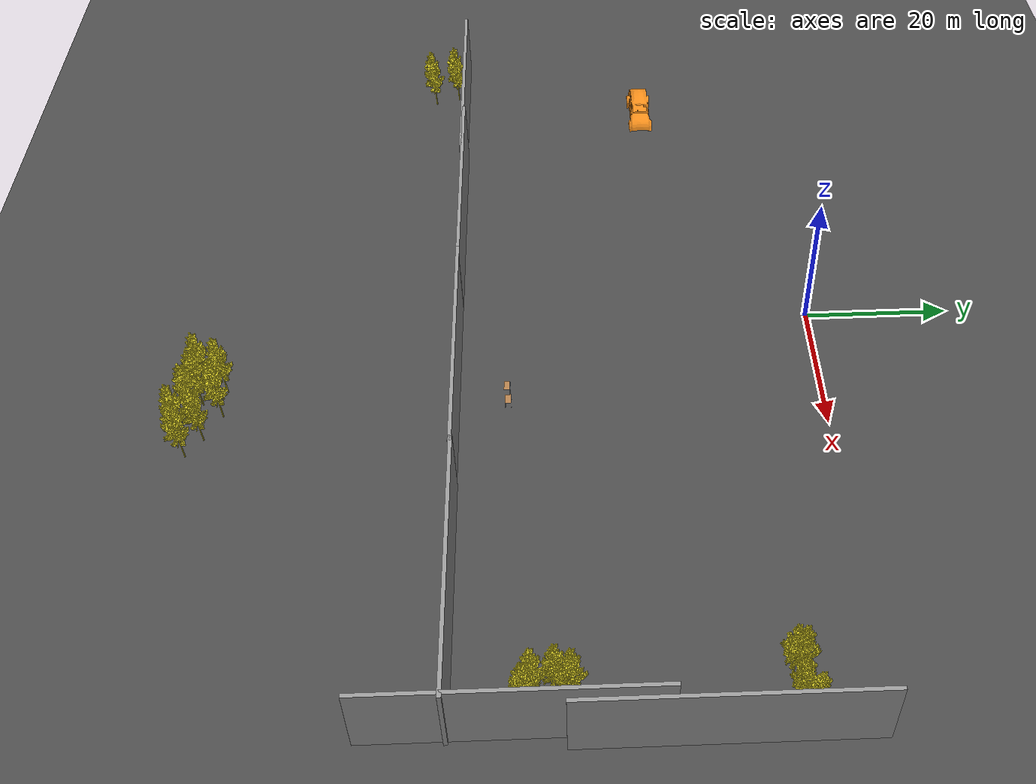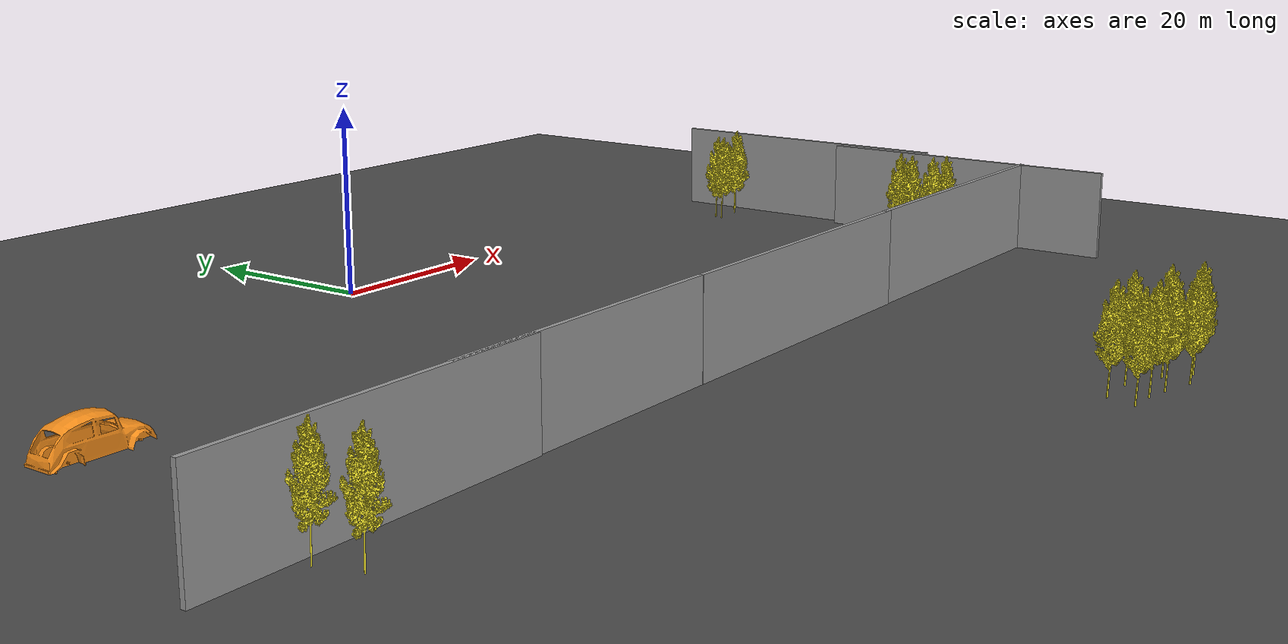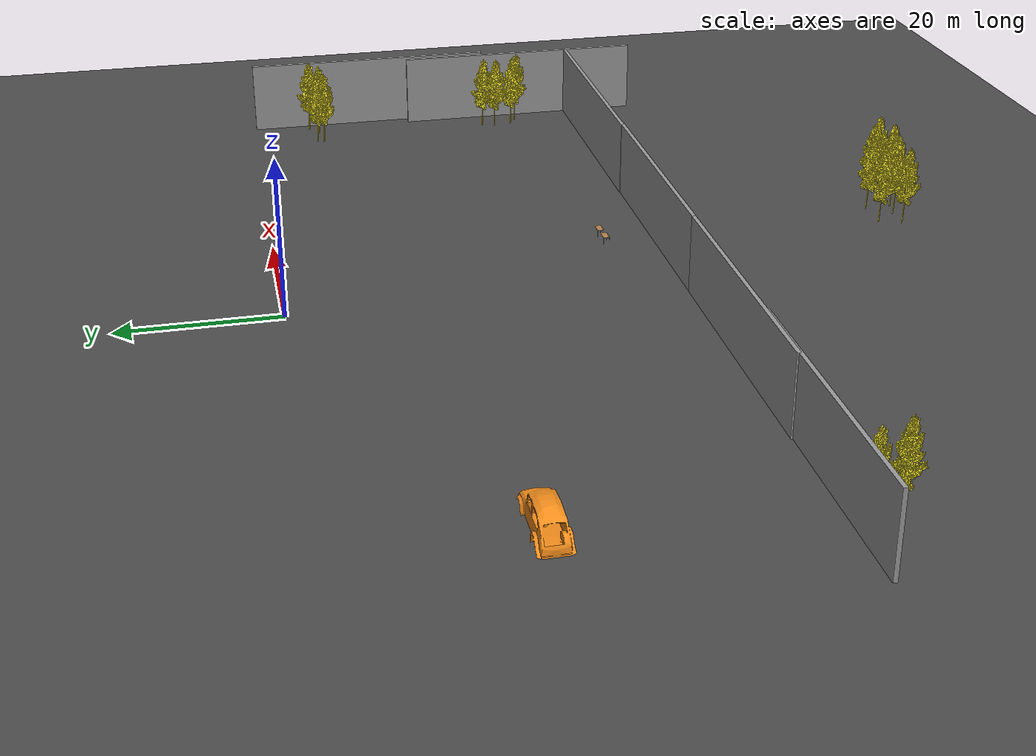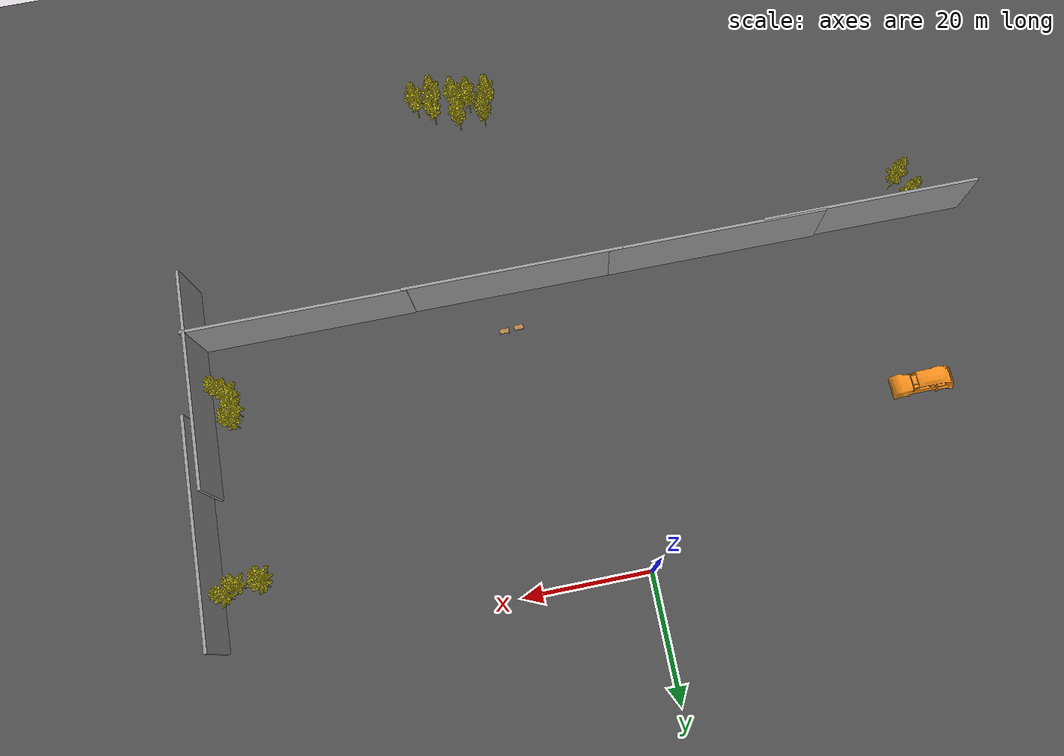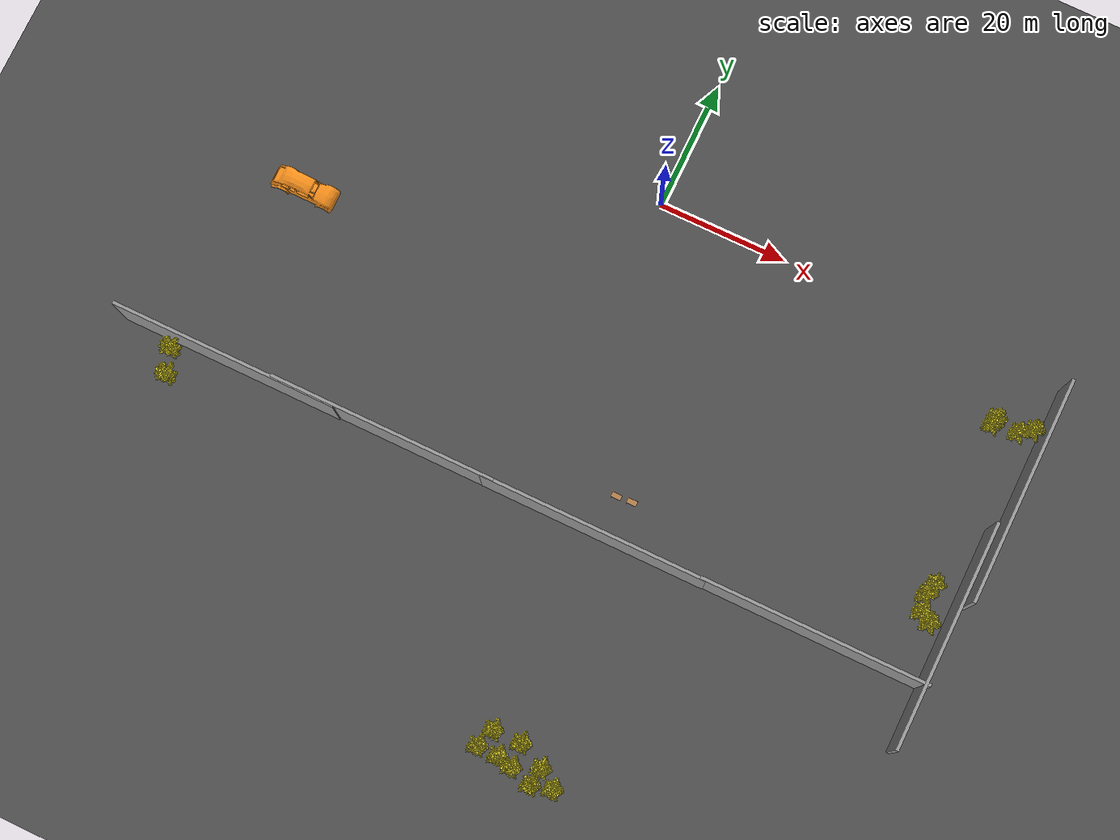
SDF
<sdf version="1.6">
 <world name="default">
  <model name="ground_plane">
   <static>1</static>
   <link name="link">
    <collision name="collision">
     <geometry><plane><normal>0 0 1</normal><size>40000 40000</size></plane></geometry>
     <surface>
      <contact><collide_bitmask>65535</collide_bitmask></contact>
      <friction><ode><mu>100</mu><mu2>50</mu2></ode></friction>
     </surface>
    </collision>
    <visual name="visual">
     <cast_shadows>0</cast_shadows>
     <geometry><plane><normal>0 0 1</normal><size>130 180</size></plane></geometry>
     <material>
      <script><uri>file://media/materials/scripts/gazebo.material</uri><name>Gazebo/Road</name></script>
     </material>
    </visual>
   </link>
  </model>
  <model name="table">
   <static>1</static>
   <link name="link">
    <collision name="surface">
     <pose>0 0 1 0 -0 0</pose>
     <geometry><box><size>1.5 0.8 0.03</size></box></geometry>
     <surface><friction><ode><mu>0.6</mu><mu2>0.6</mu2></ode></friction></surface>
    </collision>
    <visual name="visual1">
     <pose>0 0 1 0 -0 0</pose>
     <geometry><box><size>1.5 0.8 0.03</size></box></geometry>
     <material>
      <script><uri>file://media/materials/scripts/gazebo.material</uri><name>Gazebo/Wood</name></script>
     </material>
    </visual>
    <collision name="front_left_leg">
     <pose>0.68 0.38 0.5 0 -0 0</pose>
     <geometry><cylinder><radius>0.02</radius><length>1</length></cylinder></geometry>
    </collision>
    <visual name="front_left_leg">
     <pose>0.68 0.38 0.5 0 -0 0</pose>
     <geometry><cylinder><radius>0.02</radius><length>1</length></cylinder></geometry>
     <material>
      <script><uri>file://media/materials/scripts/gazebo.material</uri><name>Gazebo/Grey</name></script>
     </material>
    </visual>
    <collision name="front_right_leg">
     <pose>0.68 -0.38 0.5 0 -0 0</pose>
     <geometry><cylinder><radius>0.02</radius><length>1</length></cylinder></geometry>
    </collision>
    <visual name="front_right_leg">
     <pose>0.68 -0.38 0.5 0 -0 0</pose>
     <geometry><cylinder><radius>0.02</radius><length>1</length></cylinder></geometry>
     <material>
      <script><uri>file://media/materials/scripts/gazebo.material</uri><name>Gazebo/Grey</name></script>
     </material>
    </visual>
    <collision name="back_right_leg">
     <pose>-0.68 -0.38 0.5 0 -0 0</pose>
     <geometry><cylinder><radius>0.02</radius><length>1</length></cylinder></geometry>
    </collision>
    <visual name="back_right_leg">
     <pose>-0.68 -0.38 0.5 0 -0 0</pose>
     <geometry><cylinder><radius>0.02</radius><length>1</length></cylinder></geometry>
     <material>
      <script><uri>file://media/materials/scripts/gazebo.material</uri><name>Gazebo/Grey</name></script>
     </material>
    </visual>
    <collision name="back_left_leg">
     <pose>-0.68 0.38 0.5 0 -0 0</pose>
     <geometry><cylinder><radius>0.02</radius><length>1</length></cylinder></geometry>
    </collision>
    <visual name="back_left_leg">
     <pose>-0.68 0.38 0.5 0 -0 0</pose>
     <geometry><cylinder><radius>0.02</radius><length>1</length></cylinder></geometry>
     <material>
      <script><uri>file://media/materials/scripts/gazebo.material</uri><name>Gazebo/Grey</name></script>
     </material>
    </visual>
   </link>
   <pose>15.0111 -42.1076 0 0 -0 0</pose>
  </model>
  <model name="table_0">
   <static>1</static>
   <link name="link">
    <collision name="surface">
     <pose>0 0 1 0 -0 0</pose>
     <geometry><box><size>1.5 0.8 0.03</size></box></geometry>
     <surface><friction><ode><mu>0.6</mu><mu2>0.6</mu2></ode></friction></surface>
    </collision>
    <visual name="visual1">
     <pose>0 0 1 0 -0 0</pose>
     <geometry><box><size>1.5 0.8 0.03</size></box></geometry>
     <material>
      <script><uri>file://media/materials/scripts/gazebo.material</uri><name>Gazebo/Wood</name></script>
     </material>
    </visual>
    <collision name="front_left_leg">
     <pose>0.68 0.38 0.5 0 -0 0</pose>
     <geometry><cylinder><radius>0.02</radius><length>1</length></cylinder></geometry>
    </collision>
    <visual name="front_left_leg">
     <pose>0.68 0.38 0.5 0 -0 0</pose>
     <geometry><cylinder><radius>0.02</radius><length>1</length></cylinder></geometry>
     <material>
      <script><uri>file://media/materials/scripts/gazebo.material</uri><name>Gazebo/Grey</name></script>
     </material>
    </visual>
    <collision name="front_right_leg">
     <pose>0.68 -0.38 0.5 0 -0 0</pose>
     <geometry><cylinder><radius>0.02</radius><length>1</length></cylinder></geometry>
    </collision>
    <visual name="front_right_leg">
     <pose>0.68 -0.38 0.5 0 -0 0</pose>
     <geometry><cylinder><radius>0.02</radius><length>1</length></cylinder></geometry>
     <material>
      <script><uri>file://media/materials/scripts/gazebo.material</uri><name>Gazebo/Grey</name></script>
     </material>
    </visual>
    <collision name="back_right_leg">
     <pose>-0.68 -0.38 0.5 0 -0 0</pose>
     <geometry><cylinder><radius>0.02</radius><length>1</length></cylinder></geometry>
    </collision>
    <visual name="back_right_leg">
     <pose>-0.68 -0.38 0.5 0 -0 0</pose>
     <geometry><cylinder><radius>0.02</radius><length>1</length></cylinder></geometry>
     <material>
      <script><uri>file://media/materials/scripts/gazebo.material</uri><name>Gazebo/Grey</name></script>
     </material>
    </visual>
    <collision name="back_left_leg">
     <pose>-0.68 0.38 0.5 0 -0 0</pose>
     <geometry><cylinder><radius>0.02</radius><length>1</length></cylinder></geometry>
    </collision>
    <visual name="back_left_leg">
     <pose>-0.68 0.38 0.5 0 -0 0</pose>
     <geometry><cylinder><radius>0.02</radius><length>1</length></cylinder></geometry>
     <material>
      <script><uri>file://media/materials/scripts/gazebo.material</uri><name>Gazebo/Grey</name></script>
     </material>
    </visual>
   </link>
   <pose>12.6248 -42.2786 0 0 -0 0</pose>
  </model>
  <model name="wall1_clone_clone_0_clone_3">
   <link name="link">
    <enable_wind>1</enable_wind>
    <inertial>
     <mass>1</mass>
     <inertia><ixx>1</ixx><ixy>0</ixy><ixz>0</ixz><iyy>1</iyy><iyz>0</iyz><izz>1</izz></inertia>
    </inertial>
    <visual name="visual">
     <cast_shadows>0</cast_shadows>
     <geometry><box><size>35 0.5 10</size></box></geometry>
     <material>
      <script>
       <uri>model://grey_wall/materials/scripts</uri>
       <uri>model://grey_wall/materials/textures</uri>
       <name>vrc/grey_wall</name>
      </script>
      <shader type="pixel"><normal_map>__default__</normal_map></shader>
      <ambient>1 1 1 1</ambient>
      <diffuse>1 1 1 1</diffuse>
      <specular>0 0 0 1</specular>
      <emissive>0 0 0 1</emissive>
     </material>
    </visual>
    <collision name="collision">
     <geometry><box><size>35 0.5 10</size></box></geometry>
     <surface>
      <friction>
       <ode><mu>1</mu><mu2>1</mu2><fdir1>0 0 0</fdir1><slip1>0</slip1><slip2>0</slip2></ode>
       <torsional>
        <coefficient>1</coefficient>
        <patch_radius>0</patch_radius>
        <surface_radius>0</surface_radius>
        <use_patch_radius>1</use_patch_radius>
        <ode><slip>0</slip></ode>
       </torsional>
      </friction>
      <bounce><restitution_coefficient>0</restitution_coefficient><threshold>1e+06</threshold></bounce>
      <contact>
       <collide_without_contact>0</collide_without_contact>
       <collide_without_contact_bitmask>1</collide_without_contact_bitmask>
       <collide_bitmask>1</collide_bitmask>
       <ode>
        <soft_cfm>0</soft_cfm>
        <soft_erp>0.2</soft_erp>
        <kp>1e+13</kp>
        <kd>1</kd>
        <max_vel>0.01</max_vel>
        <min_depth>0</min_depth>
       </ode>
       <bullet>
        <split_impulse>1</split_impulse>
        <split_impulse_penetration_threshold>-0.01</split_impulse_penetration_threshold>
        <soft_cfm>0</soft_cfm>
        <soft_erp>0.2</soft_erp>
        <kp>1e+13</kp>
        <kd>1</kd>
       </bullet>
      </contact>
     </surface>
    </collision>
   </link>
   <static>1</static>
   <pose>62.8276 -41.3887 5 0 0 -1.57191</pose>
  </model>
  <model name="wall1_clone_clone_clone">
   <link name="link">
    <enable_wind>1</enable_wind>
    <inertial>
     <mass>1</mass>
     <inertia><ixx>1</ixx><ixy>0</ixy><ixz>0</ixz><iyy>1</iyy><iyz>0</iyz><izz>1</izz></inertia>
    </inertial>
    <visual name="visual">
     <cast_shadows>0</cast_shadows>
     <geometry><box><size>35 0.5 10</size></box></geometry>
     <material>
      <script>
       <uri>model://grey_wall/materials/scripts</uri>
       <uri>model://grey_wall/materials/textures</uri>
       <name>vrc/grey_wall</name>
      </script>
      <shader type="pixel"><normal_map>__default__</normal_map></shader>
      <ambient>1 1 1 1</ambient>
      <diffuse>1 1 1 1</diffuse>
      <specular>0 0 0 1</specular>
      <emissive>0 0 0 1</emissive>
     </material>
    </visual>
    <collision name="collision">
     <geometry><box><size>35 0.5 10</size></box></geometry>
     <surface>
      <friction>
       <ode><mu>1</mu><mu2>1</mu2><fdir1>0 0 0</fdir1><slip1>0</slip1><slip2>0</slip2></ode>
       <torsional>
        <coefficient>1</coefficient>
        <patch_radius>0</patch_radius>
        <surface_radius>0</surface_radius>
        <use_patch_radius>1</use_patch_radius>
        <ode><slip>0</slip></ode>
       </torsional>
      </friction>
      <bounce><restitution_coefficient>0</restitution_coefficient><threshold>1e+06</threshold></bounce>
      <contact>
       <collide_without_contact>0</collide_without_contact>
       <collide_without_contact_bitmask>1</collide_without_contact_bitmask>
       <collide_bitmask>1</collide_bitmask>
       <ode>
        <soft_cfm>0</soft_cfm>
        <soft_erp>0.2</soft_erp>
        <kp>1e+13</kp>
        <kd>1</kd>
        <max_vel>0.01</max_vel>
        <min_depth>0</min_depth>
       </ode>
       <bullet>
        <split_impulse>1</split_impulse>
        <split_impulse_penetration_threshold>-0.01</split_impulse_penetration_threshold>
        <soft_cfm>0</soft_cfm>
        <soft_erp>0.2</soft_erp>
        <kp>1e+13</kp>
        <kd>1</kd>
       </bullet>
      </contact>
     </surface>
    </collision>
   </link>
   <static>1</static>
   <pose>45.9728 -48.7382 5 0 -0 0</pose>
  </model>
  <model name="wall1_clone_clone_clone_0">
   <link name="link">
    <enable_wind>1</enable_wind>
    <inertial>
     <mass>1</mass>
     <inertia><ixx>1</ixx><ixy>0</ixy><ixz>0</ixz><iyy>1</iyy><iyz>0</iyz><izz>1</izz></inertia>
    </inertial>
    <visual name="visual">
     <cast_shadows>0</cast_shadows>
     <geometry><box><size>35 0.5 10</size></box></geometry>
     <material>
      <script>
       <uri>model://grey_wall/materials/scripts</uri>
       <uri>model://grey_wall/materials/textures</uri>
       <name>vrc/grey_wall</name>
      </script>
      <shader type="pixel"><normal_map>__default__</normal_map></shader>
      <ambient>1 1 1 1</ambient>
      <diffuse>1 1 1 1</diffuse>
      <specular>0 0 0 1</specular>
      <emissive>0 0 0 1</emissive>
     </material>
    </visual>
    <collision name="collision">
     <geometry><box><size>35 0.5 10</size></box></geometry>
     <surface>
      <friction>
       <ode><mu>1</mu><mu2>1</mu2><fdir1>0 0 0</fdir1><slip1>0</slip1><slip2>0</slip2></ode>
       <torsional>
        <coefficient>1</coefficient>
        <patch_radius>0</patch_radius>
        <surface_radius>0</surface_radius>
        <use_patch_radius>1</use_patch_radius>
        <ode><slip>0</slip></ode>
       </torsional>
      </friction>
      <bounce><restitution_coefficient>0</restitution_coefficient><threshold>1e+06</threshold></bounce>
      <contact>
       <collide_without_contact>0</collide_without_contact>
       <collide_without_contact_bitmask>1</collide_without_contact_bitmask>
       <collide_bitmask>1</collide_bitmask>
       <ode>
        <soft_cfm>0</soft_cfm>
        <soft_erp>0.2</soft_erp>
        <kp>1e+13</kp>
        <kd>1</kd>
        <max_vel>0.01</max_vel>
        <min_depth>0</min_depth>
       </ode>
       <bullet>
        <split_impulse>1</split_impulse>
        <split_impulse_penetration_threshold>-0.01</split_impulse_penetration_threshold>
        <soft_cfm>0</soft_cfm>
        <soft_erp>0.2</soft_erp>
        <kp>1e+13</kp>
        <kd>1</kd>
       </bullet>
      </contact>
     </surface>
    </collision>
   </link>
   <static>1</static>
   <pose>11.8876 -48.8282 5 0 -0 0</pose>
  </model>
  <model name="wall1_clone_clone_clone_1">
   <link name="link">
    <enable_wind>1</enable_wind>
    <inertial>
     <mass>1</mass>
     <inertia><ixx>1</ixx><ixy>0</ixy><ixz>0</ixz><iyy>1</iyy><iyz>0</iyz><izz>1</izz></inertia>
    </inertial>
    <visual name="visual">
     <cast_shadows>0</cast_shadows>
     <geometry><box><size>35 0.5 10</size></box></geometry>
     <material>
      <script>
       <uri>model://grey_wall/materials/scripts</uri>
       <uri>model://grey_wall/materials/textures</uri>
       <name>vrc/grey_wall</name>
      </script>
      <shader type="pixel"><normal_map>__default__</normal_map></shader>
      <ambient>1 1 1 1</ambient>
      <diffuse>1 1 1 1</diffuse>
      <specular>0 0 0 1</specular>
      <emissive>0 0 0 1</emissive>
     </material>
    </visual>
    <collision name="collision">
     <geometry><box><size>35 0.5 10</size></box></geometry>
     <surface>
      <friction>
       <ode><mu>1</mu><mu2>1</mu2><fdir1>0 0 0</fdir1><slip1>0</slip1><slip2>0</slip2></ode>
       <torsional>
        <coefficient>1</coefficient>
        <patch_radius>0</patch_radius>
        <surface_radius>0</surface_radius>
        <use_patch_radius>1</use_patch_radius>
        <ode><slip>0</slip></ode>
       </torsional>
      </friction>
      <bounce><restitution_coefficient>0</restitution_coefficient><threshold>1e+06</threshold></bounce>
      <contact>
       <collide_without_contact>0</collide_without_contact>
       <collide_without_contact_bitmask>1</collide_without_contact_bitmask>
       <collide_bitmask>1</collide_bitmask>
       <ode>
        <soft_cfm>0</soft_cfm>
        <soft_erp>0.2</soft_erp>
        <kp>1e+13</kp>
        <kd>1</kd>
        <max_vel>0.01</max_vel>
        <min_depth>0</min_depth>
       </ode>
       <bullet>
        <split_impulse>1</split_impulse>
        <split_impulse_penetration_threshold>-0.01</split_impulse_penetration_threshold>
        <soft_cfm>0</soft_cfm>
        <soft_erp>0.2</soft_erp>
        <kp>1e+13</kp>
        <kd>1</kd>
       </bullet>
      </contact>
     </surface>
    </collision>
   </link>
   <static>1</static>
   <pose>-20.9336 -48.8053 5 0 -0 0</pose>
  </model>
  <model name="wall1_clone_clone_clone_2">
   <link name="link">
    <enable_wind>1</enable_wind>
    <inertial>
     <mass>1</mass>
     <inertia><ixx>1</ixx><ixy>0</ixy><ixz>0</ixz><iyy>1</iyy><iyz>0</iyz><izz>1</izz></inertia>
    </inertial>
    <visual name="visual">
     <cast_shadows>0</cast_shadows>
     <geometry><box><size>35 0.5 10</size></box></geometry>
     <material>
      <script>
       <uri>model://grey_wall/materials/scripts</uri>
       <uri>model://grey_wall/materials/textures</uri>
       <name>vrc/grey_wall</name>
      </script>
      <shader type="pixel"><normal_map>__default__</normal_map></shader>
      <ambient>1 1 1 1</ambient>
      <diffuse>1 1 1 1</diffuse>
      <specular>0 0 0 1</specular>
      <emissive>0 0 0 1</emissive>
     </material>
    </visual>
    <collision name="collision">
     <geometry><box><size>35 0.5 10</size></box></geometry>
     <surface>
      <friction>
       <ode><mu>1</mu><mu2>1</mu2><fdir1>0 0 0</fdir1><slip1>0</slip1><slip2>0</slip2></ode>
       <torsional>
        <coefficient>1</coefficient>
        <patch_radius>0</patch_radius>
        <surface_radius>0</surface_radius>
        <use_patch_radius>1</use_patch_radius>
        <ode><slip>0</slip></ode>
       </torsional>
      </friction>
      <bounce><restitution_coefficient>0</restitution_coefficient><threshold>1e+06</threshold></bounce>
      <contact>
       <collide_without_contact>0</collide_without_contact>
       <collide_without_contact_bitmask>1</collide_without_contact_bitmask>
       <collide_bitmask>1</collide_bitmask>
       <ode>
        <soft_cfm>0</soft_cfm>
        <soft_erp>0.2</soft_erp>
        <kp>1e+13</kp>
        <kd>1</kd>
        <max_vel>0.01</max_vel>
        <min_depth>0</min_depth>
       </ode>
       <bullet>
        <split_impulse>1</split_impulse>
        <split_impulse_penetration_threshold>-0.01</split_impulse_penetration_threshold>
        <soft_cfm>0</soft_cfm>
        <soft_erp>0.2</soft_erp>
        <kp>1e+13</kp>
        <kd>1</kd>
       </bullet>
      </contact>
     </surface>
    </collision>
   </link>
   <static>1</static>
   <pose>-45.9253 -48.9959 5 0 -0 0</pose>
  </model>
  <model name="tree0_clone_clone_clone_14">
   <link name="tree_base">
    <inertial>
     <mass>50</mass>
     <inertia>
      <ixx>6.71748</ixx>
      <ixy>2.148e-05</ixy>
      <ixz>-2.4e-07</ixz>
      <iyy>6.71748</iyy>
      <iyz>-0.171807</iyz>
      <izz>6.71748</izz>
     </inertia>
    </inertial>
    <collision name="tree_base_fixed_joint_lump__collision_collision">
     <geometry>
      <mesh>
       <scale>0.4 0.4 0.6</scale>
       <uri>/home/ana/catkin_ws/src/frontier_exploration_3d/models/tree/meshes/tree_25k_mesh.dae</uri>
      </mesh>
     </geometry>
    </collision>
    <visual name="tree_base_visual">
     <geometry>
      <mesh>
       <scale>0.4 0.4 0.6</scale>
       <uri>/home/ana/catkin_ws/src/frontier_exploration_3d/models/tree/meshes/tree_25k_mesh.dae</uri>
      </mesh>
     </geometry>
     <material>
      <script><name>Gazebo/Yellow</name><uri>file://media/materials/scripts/gazebo.material</uri></script>
     </material>
    </visual>
   </link>
   <joint name="joint_tree_base" type="fixed"><child>tree_base</child><parent>world</parent></joint>
   <static>1</static>
   <pose>-54.0866 -46.8303 0 0 -0 0</pose>
  </model>
  <model name="tree0_clone_clone_clone_16">
   <link name="tree_base">
    <inertial>
     <mass>50</mass>
     <inertia>
      <ixx>6.71748</ixx>
      <ixy>2.148e-05</ixy>
      <ixz>-2.4e-07</ixz>
      <iyy>6.71748</iyy>
      <iyz>-0.171807</iyz>
      <izz>6.71748</izz>
     </inertia>
    </inertial>
    <collision name="tree_base_fixed_joint_lump__collision_collision">
     <geometry>
      <mesh>
       <scale>0.4 0.4 0.6</scale>
       <uri>/home/ana/catkin_ws/src/frontier_exploration_3d/models/tree/meshes/tree_25k_mesh.dae</uri>
      </mesh>
     </geometry>
    </collision>
    <visual name="tree_base_visual">
     <geometry>
      <mesh>
       <scale>0.4 0.4 0.6</scale>
       <uri>/home/ana/catkin_ws/src/frontier_exploration_3d/models/tree/meshes/tree_25k_mesh.dae</uri>
      </mesh>
     </geometry>
     <material>
      <script><name>Gazebo/Yellow</name><uri>file://media/materials/scripts/gazebo.material</uri></script>
     </material>
    </visual>
   </link>
   <joint name="joint_tree_base" type="fixed"><child>tree_base</child><parent>world</parent></joint>
   <static>1</static>
   <pose>-52.9016 -50.5534 0 0 -0 0</pose>
  </model>
  <model name="wall1_clone_clone_0_clone_5_clone_1">
   <link name="link">
    <enable_wind>1</enable_wind>
    <inertial>
     <mass>1</mass>
     <inertia><ixx>1</ixx><ixy>0</ixy><ixz>0</ixz><iyy>1</iyy><iyz>0</iyz><izz>1</izz></inertia>
    </inertial>
    <visual name="visual">
     <cast_shadows>0</cast_shadows>
     <geometry><box><size>35 0.5 10</size></box></geometry>
     <material>
      <script>
       <uri>model://grey_wall/materials/scripts</uri>
       <uri>model://grey_wall/materials/textures</uri>
       <name>vrc/grey_wall</name>
      </script>
      <shader type="pixel"><normal_map>__default__</normal_map></shader>
      <ambient>1 1 1 1</ambient>
      <diffuse>1 1 1 1</diffuse>
      <specular>0 0 0 1</specular>
      <emissive>0 0 0 1</emissive>
     </material>
    </visual>
    <collision name="collision">
     <geometry><box><size>35 0.5 10</size></box></geometry>
     <surface>
      <friction>
       <ode><mu>1</mu><mu2>1</mu2><fdir1>0 0 0</fdir1><slip1>0</slip1><slip2>0</slip2></ode>
       <torsional>
        <coefficient>1</coefficient>
        <patch_radius>0</patch_radius>
        <surface_radius>0</surface_radius>
        <use_patch_radius>1</use_patch_radius>
        <ode><slip>0</slip></ode>
       </torsional>
      </friction>
      <bounce><restitution_coefficient>0</restitution_coefficient><threshold>1e+06</threshold></bounce>
      <contact>
       <collide_without_contact>0</collide_without_contact>
       <collide_without_contact_bitmask>1</collide_without_contact_bitmask>
       <collide_bitmask>1</collide_bitmask>
       <ode>
        <soft_cfm>0</soft_cfm>
        <soft_erp>0.2</soft_erp>
        <kp>1e+13</kp>
        <kd>1</kd>
        <max_vel>0.01</max_vel>
        <min_depth>0</min_depth>
       </ode>
       <bullet>
        <split_impulse>1</split_impulse>
        <split_impulse_penetration_threshold>-0.01</split_impulse_penetration_threshold>
        <soft_cfm>0</soft_cfm>
        <soft_erp>0.2</soft_erp>
        <kp>1e+13</kp>
        <kd>1</kd>
       </bullet>
      </contact>
     </surface>
    </collision>
   </link>
   <static>1</static>
   <pose>64.282 -18.2132 5 0 0 -1.57191</pose>
  </model>
  <model name="tree0_clone_clone_clone_1_clone_4_clone">
   <link name="tree_base">
    <inertial>
     <mass>50</mass>
     <inertia>
      <ixx>6.71748</ixx>
      <ixy>2.148e-05</ixy>
      <ixz>-2.4e-07</ixz>
      <iyy>6.71748</iyy>
      <iyz>-0.171807</iyz>
      <izz>6.71748</izz>
     </inertia>
    </inertial>
    <collision name="tree_base_fixed_joint_lump__collision_collision">
     <geometry>
      <mesh>
       <scale>0.4 0.4 0.6</scale>
       <uri>/home/ana/catkin_ws/src/frontier_exploration_3d/models/tree/meshes/tree_25k_mesh.dae</uri>
      </mesh>
     </geometry>
    </collision>
    <visual name="tree_base_visual">
     <geometry>
      <mesh>
       <scale>0.4 0.4 0.6</scale>
       <uri>/home/ana/catkin_ws/src/frontier_exploration_3d/models/tree/meshes/tree_25k_mesh.dae</uri>
      </mesh>
     </geometry>
     <material>
      <script><name>Gazebo/Yellow</name><uri>file://media/materials/scripts/gazebo.material</uri></script>
     </material>
    </visual>
   </link>
   <joint name="joint_tree_base" type="fixed"><child>tree_base</child><parent>world</parent></joint>
   <static>1</static>
   <pose>56.8639 -6.61975 0 0 -0 0</pose>
  </model>
  <model name="tree0_clone_clone_clone_1_clone_4_clone_7_clone">
   <link name="tree_base">
    <inertial>
     <mass>50</mass>
     <inertia>
      <ixx>6.71748</ixx>
      <ixy>2.148e-05</ixy>
      <ixz>-2.4e-07</ixz>
      <iyy>6.71748</iyy>
      <iyz>-0.171807</iyz>
      <izz>6.71748</izz>
     </inertia>
    </inertial>
    <collision name="tree_base_fixed_joint_lump__collision_collision">
     <geometry>
      <mesh>
       <scale>0.4 0.4 0.6</scale>
       <uri>/home/ana/catkin_ws/src/frontier_exploration_3d/models/tree/meshes/tree_25k_mesh.dae</uri>
      </mesh>
     </geometry>
    </collision>
    <visual name="tree_base_visual">
     <geometry>
      <mesh>
       <scale>0.4 0.4 0.6</scale>
       <uri>/home/ana/catkin_ws/src/frontier_exploration_3d/models/tree/meshes/tree_25k_mesh.dae</uri>
      </mesh>
     </geometry>
     <material>
      <script><name>Gazebo/Yellow</name><uri>file://media/materials/scripts/gazebo.material</uri></script>
     </material>
    </visual>
   </link>
   <joint name="joint_tree_base" type="fixed"><child>tree_base</child><parent>world</parent></joint>
   <static>1</static>
   <pose>22.4047 -79.8767 0 0 -0 0</pose>
  </model>
  <model name="tree0_clone_clone_clone_1_clone_4_clone_7_clone_0">
   <link name="tree_base">
    <inertial>
     <mass>50</mass>
     <inertia>
      <ixx>6.71748</ixx>
      <ixy>2.148e-05</ixy>
      <ixz>-2.4e-07</ixz>
      <iyy>6.71748</iyy>
      <iyz>-0.171807</iyz>
      <izz>6.71748</izz>
     </inertia>
    </inertial>
    <collision name="tree_base_fixed_joint_lump__collision_collision">
     <geometry>
      <mesh>
       <scale>0.4 0.4 0.6</scale>
       <uri>/home/ana/catkin_ws/src/frontier_exploration_3d/models/tree/meshes/tree_25k_mesh.dae</uri>
      </mesh>
     </geometry>
    </collision>
    <visual name="tree_base_visual">
     <geometry>
      <mesh>
       <scale>0.4 0.4 0.6</scale>
       <uri>/home/ana/catkin_ws/src/frontier_exploration_3d/models/tree/meshes/tree_25k_mesh.dae</uri>
      </mesh>
     </geometry>
     <material>
      <script><name>Gazebo/Yellow</name><uri>file://media/materials/scripts/gazebo.material</uri></script>
     </material>
    </visual>
   </link>
   <joint name="joint_tree_base" type="fixed"><child>tree_base</child><parent>world</parent></joint>
   <static>1</static>
   <pose>19.3507 -80.6253 0 0 -0 0</pose>
  </model>
  <model name="tree0_clone_clone_clone_1_clone_4_clone_7_clone_1">
   <link name="tree_base">
    <inertial>
     <mass>50</mass>
     <inertia>
      <ixx>6.71748</ixx>
      <ixy>2.148e-05</ixy>
      <ixz>-2.4e-07</ixz>
      <iyy>6.71748</iyy>
      <iyz>-0.171807</iyz>
      <izz>6.71748</izz>
     </inertia>
    </inertial>
    <collision name="tree_base_fixed_joint_lump__collision_collision">
     <geometry>
      <mesh>
       <scale>0.4 0.4 0.6</scale>
       <uri>/home/ana/catkin_ws/src/frontier_exploration_3d/models/tree/meshes/tree_25k_mesh.dae</uri>
      </mesh>
     </geometry>
    </collision>
    <visual name="tree_base_visual">
     <geometry>
      <mesh>
       <scale>0.4 0.4 0.6</scale>
       <uri>/home/ana/catkin_ws/src/frontier_exploration_3d/models/tree/meshes/tree_25k_mesh.dae</uri>
      </mesh>
     </geometry>
     <material>
      <script><name>Gazebo/Yellow</name><uri>file://media/materials/scripts/gazebo.material</uri></script>
     </material>
    </visual>
   </link>
   <joint name="joint_tree_base" type="fixed"><child>tree_base</child><parent>world</parent></joint>
   <static>1</static>
   <pose>19.7208 -77.9418 0 0 -0 0</pose>
  </model>
  <model name="tree0_clone_clone_clone_1_clone_4_clone_7_clone_2">
   <link name="tree_base">
    <inertial>
     <mass>50</mass>
     <inertia>
      <ixx>6.71748</ixx>
      <ixy>2.148e-05</ixy>
      <ixz>-2.4e-07</ixz>
      <iyy>6.71748</iyy>
      <iyz>-0.171807</iyz>
      <izz>6.71748</izz>
     </inertia>
    </inertial>
    <collision name="tree_base_fixed_joint_lump__collision_collision">
     <geometry>
      <mesh>
       <scale>0.4 0.4 0.6</scale>
       <uri>/home/ana/catkin_ws/src/frontier_exploration_3d/models/tree/meshes/tree_25k_mesh.dae</uri>
      </mesh>
     </geometry>
    </collision>
    <visual name="tree_base_visual">
     <geometry>
      <mesh>
       <scale>0.4 0.4 0.6</scale>
       <uri>/home/ana/catkin_ws/src/frontier_exploration_3d/models/tree/meshes/tree_25k_mesh.dae</uri>
      </mesh>
     </geometry>
     <material>
      <script><name>Gazebo/Yellow</name><uri>file://media/materials/scripts/gazebo.material</uri></script>
     </material>
    </visual>
   </link>
   <joint name="joint_tree_base" type="fixed"><child>tree_base</child><parent>world</parent></joint>
   <static>1</static>
   <pose>15.919 -79.5586 0 0 -0 0</pose>
  </model>
  <model name="tree0_clone_clone_clone_1_clone_4_clone_7_clone_3">
   <link name="tree_base">
    <inertial>
     <mass>50</mass>
     <inertia>
      <ixx>6.71748</ixx>
      <ixy>2.148e-05</ixy>
      <ixz>-2.4e-07</ixz>
      <iyy>6.71748</iyy>
      <iyz>-0.171807</iyz>
      <izz>6.71748</izz>
     </inertia>
    </inertial>
    <collision name="tree_base_fixed_joint_lump__collision_collision">
     <geometry>
      <mesh>
       <scale>0.4 0.4 0.6</scale>
       <uri>/home/ana/catkin_ws/src/frontier_exploration_3d/models/tree/meshes/tree_25k_mesh.dae</uri>
      </mesh>
     </geometry>
    </collision>
    <visual name="tree_base_visual">
     <geometry>
      <mesh>
       <scale>0.4 0.4 0.6</scale>
       <uri>/home/ana/catkin_ws/src/frontier_exploration_3d/models/tree/meshes/tree_25k_mesh.dae</uri>
      </mesh>
     </geometry>
     <material>
      <script><name>Gazebo/Yellow</name><uri>file://media/materials/scripts/gazebo.material</uri></script>
     </material>
    </visual>
   </link>
   <joint name="joint_tree_base" type="fixed"><child>tree_base</child><parent>world</parent></joint>
   <static>1</static>
   <pose>15.7362 -76.0122 0 0 -0 0</pose>
  </model>
  <model name="tree0_clone_clone_clone_1_clone_4_clone_7_clone_4">
   <link name="tree_base">
    <inertial>
     <mass>50</mass>
     <inertia>
      <ixx>6.71748</ixx>
      <ixy>2.148e-05</ixy>
      <ixz>-2.4e-07</ixz>
      <iyy>6.71748</iyy>
      <iyz>-0.171807</iyz>
      <izz>6.71748</izz>
     </inertia>
    </inertial>
    <collision name="tree_base_fixed_joint_lump__collision_collision">
     <geometry>
      <mesh>
       <scale>0.4 0.4 0.6</scale>
       <uri>/home/ana/catkin_ws/src/frontier_exploration_3d/models/tree/meshes/tree_25k_mesh.dae</uri>
      </mesh>
     </geometry>
    </collision>
    <visual name="tree_base_visual">
     <geometry>
      <mesh>
       <scale>0.4 0.4 0.6</scale>
       <uri>/home/ana/catkin_ws/src/frontier_exploration_3d/models/tree/meshes/tree_25k_mesh.dae</uri>
      </mesh>
     </geometry>
     <material>
      <script><name>Gazebo/Yellow</name><uri>file://media/materials/scripts/gazebo.material</uri></script>
     </material>
    </visual>
   </link>
   <joint name="joint_tree_base" type="fixed"><child>tree_base</child><parent>world</parent></joint>
   <static>1</static>
   <pose>13.5609 -78.9873 0 0 -0 0</pose>
  </model>
  <model name="tree0_clone_clone_clone_1_clone_4_clone_7_clone_5">
   <link name="tree_base">
    <inertial>
     <mass>50</mass>
     <inertia>
      <ixx>6.71748</ixx>
      <ixy>2.148e-05</ixy>
      <ixz>-2.4e-07</ixz>
      <iyy>6.71748</iyy>
      <iyz>-0.171807</iyz>
      <izz>6.71748</izz>
     </inertia>
    </inertial>
    <collision name="tree_base_fixed_joint_lump__collision_collision">
     <geometry>
      <mesh>
       <scale>0.4 0.4 0.6</scale>
       <uri>/home/ana/catkin_ws/src/frontier_exploration_3d/models/tree/meshes/tree_25k_mesh.dae</uri>
      </mesh>
     </geometry>
    </collision>
    <visual name="tree_base_visual">
     <geometry>
      <mesh>
       <scale>0.4 0.4 0.6</scale>
       <uri>/home/ana/catkin_ws/src/frontier_exploration_3d/models/tree/meshes/tree_25k_mesh.dae</uri>
      </mesh>
     </geometry>
     <material>
      <script><name>Gazebo/Yellow</name><uri>file://media/materials/scripts/gazebo.material</uri></script>
     </material>
    </visual>
   </link>
   <joint name="joint_tree_base" type="fixed"><child>tree_base</child><parent>world</parent></joint>
   <static>1</static>
   <pose>11.4374 -76.026 0 0 -0 0</pose>
  </model>
  <model name="tree0_clone_clone_clone_1_clone_4_clone_7_clone_6">
   <link name="tree_base">
    <inertial>
     <mass>50</mass>
     <inertia>
      <ixx>6.71748</ixx>
      <ixy>2.148e-05</ixy>
      <ixz>-2.4e-07</ixz>
      <iyy>6.71748</iyy>
      <iyz>-0.171807</iyz>
      <izz>6.71748</izz>
     </inertia>
    </inertial>
    <collision name="tree_base_fixed_joint_lump__collision_collision">
     <geometry>
      <mesh>
       <scale>0.4 0.4 0.6</scale>
       <uri>/home/ana/catkin_ws/src/frontier_exploration_3d/models/tree/meshes/tree_25k_mesh.dae</uri>
      </mesh>
     </geometry>
    </collision>
    <visual name="tree_base_visual">
     <geometry>
      <mesh>
       <scale>0.4 0.4 0.6</scale>
       <uri>/home/ana/catkin_ws/src/frontier_exploration_3d/models/tree/meshes/tree_25k_mesh.dae</uri>
      </mesh>
     </geometry>
     <material>
      <script><name>Gazebo/Yellow</name><uri>file://media/materials/scripts/gazebo.material</uri></script>
     </material>
    </visual>
   </link>
   <joint name="joint_tree_base" type="fixed"><child>tree_base</child><parent>world</parent></joint>
   <static>1</static>
   <pose>10.3982 -78.9024 0 0 -0 0</pose>
  </model>
  <model name="tree0_clone_clone_clone_1_clone_4_clone_7_clone_7">
   <link name="tree_base">
    <inertial>
     <mass>50</mass>
     <inertia>
      <ixx>6.71748</ixx>
      <ixy>2.148e-05</ixy>
      <ixz>-2.4e-07</ixz>
      <iyy>6.71748</iyy>
      <iyz>-0.171807</iyz>
      <izz>6.71748</izz>
     </inertia>
    </inertial>
    <collision name="tree_base_fixed_joint_lump__collision_collision">
     <geometry>
      <mesh>
       <scale>0.4 0.4 0.6</scale>
       <uri>/home/ana/catkin_ws/src/frontier_exploration_3d/models/tree/meshes/tree_25k_mesh.dae</uri>
      </mesh>
     </geometry>
    </collision>
    <visual name="tree_base_visual">
     <geometry>
      <mesh>
       <scale>0.4 0.4 0.6</scale>
       <uri>/home/ana/catkin_ws/src/frontier_exploration_3d/models/tree/meshes/tree_25k_mesh.dae</uri>
      </mesh>
     </geometry>
     <material>
      <script><name>Gazebo/Yellow</name><uri>file://media/materials/scripts/gazebo.material</uri></script>
     </material>
    </visual>
   </link>
   <joint name="joint_tree_base" type="fixed"><child>tree_base</child><parent>world</parent></joint>
   <static>1</static>
   <pose>58.1539 -32.8964 0 0 -0 0</pose>
  </model>
  <model name="tree0_clone_clone_clone_1_clone_4_clone_7_clone_8">
   <link name="tree_base">
    <inertial>
     <mass>50</mass>
     <inertia>
      <ixx>6.71748</ixx>
      <ixy>2.148e-05</ixy>
      <ixz>-2.4e-07</ixz>
      <iyy>6.71748</iyy>
      <iyz>-0.171807</iyz>
      <izz>6.71748</izz>
     </inertia>
    </inertial>
    <collision name="tree_base_fixed_joint_lump__collision_collision">
     <geometry>
      <mesh>
       <scale>0.4 0.4 0.6</scale>
       <uri>/home/ana/catkin_ws/src/frontier_exploration_3d/models/tree/meshes/tree_25k_mesh.dae</uri>
      </mesh>
     </geometry>
    </collision>
    <visual name="tree_base_visual">
     <geometry>
      <mesh>
       <scale>0.4 0.4 0.6</scale>
       <uri>/home/ana/catkin_ws/src/frontier_exploration_3d/models/tree/meshes/tree_25k_mesh.dae</uri>
      </mesh>
     </geometry>
     <material>
      <script><name>Gazebo/Yellow</name><uri>file://media/materials/scripts/gazebo.material</uri></script>
     </material>
    </visual>
   </link>
   <joint name="joint_tree_base" type="fixed"><child>tree_base</child><parent>world</parent></joint>
   <static>1</static>
   <pose>58.731 -31.1031 0 0 -0 0</pose>
  </model>
  <model name="tree0_clone_clone_clone_1_clone_4_clone_7_clone_9">
   <link name="tree_base">
    <inertial>
     <mass>50</mass>
     <inertia>
      <ixx>6.71748</ixx>
      <ixy>2.148e-05</ixy>
      <ixz>-2.4e-07</ixz>
      <iyy>6.71748</iyy>
      <iyz>-0.171807</iyz>
      <izz>6.71748</izz>
     </inertia>
    </inertial>
    <collision name="tree_base_fixed_joint_lump__collision_collision">
     <geometry>
      <mesh>
       <scale>0.4 0.4 0.6</scale>
       <uri>/home/ana/catkin_ws/src/frontier_exploration_3d/models/tree/meshes/tree_25k_mesh.dae</uri>
      </mesh>
     </geometry>
    </collision>
    <visual name="tree_base_visual">
     <geometry>
      <mesh>
       <scale>0.4 0.4 0.6</scale>
       <uri>/home/ana/catkin_ws/src/frontier_exploration_3d/models/tree/meshes/tree_25k_mesh.dae</uri>
      </mesh>
     </geometry>
     <material>
      <script><name>Gazebo/Yellow</name><uri>file://media/materials/scripts/gazebo.material</uri></script>
     </material>
    </visual>
   </link>
   <joint name="joint_tree_base" type="fixed"><child>tree_base</child><parent>world</parent></joint>
   <static>1</static>
   <pose>60.2177 -36.4418 0 0 -0 0</pose>
  </model>
  <model name="car12">
   <link name="car_base">
    <pose>0 0 0.01 0 -0 0</pose>
    <inertial>
     <mass>500</mass>
     <inertia>
      <ixx>6.71748</ixx>
      <ixy>2.148e-05</ixy>
      <ixz>-2.4e-07</ixz>
      <iyy>6.71748</iyy>
      <iyz>-0.171807</iyz>
      <izz>6.71748</izz>
     </inertia>
    </inertial>
    <collision name="car_base_fixed_joint_lump__collision_collision">
     <geometry>
      <mesh>
       <scale>0.6 0.6 0.6</scale>
       <uri>/home/ana/catkin_ws/src/frontier_exploration_3d/models/car/meshes/car_mesh_1500.dae</uri>
      </mesh>
     </geometry>
    </collision>
    <visual name="car_base_visual">
     <geometry>
      <mesh>
       <scale>0.6 0.6 0.6</scale>
       <uri>/home/ana/catkin_ws/src/frontier_exploration_3d/models/car/meshes/car_mesh_1500.dae</uri>
      </mesh>
     </geometry>
     <material>
      <script><name>Gazebo/Orange</name><uri>file://media/materials/scripts/gazebo.material</uri></script>
     </material>
    </visual>
   </link>
   <joint name="joint_car_base" type="fixed"><child>car_base</child><parent>world</parent></joint>
   <static>1</static>
   <pose>-48.1829 -24.2563 0 0 -0 0</pose>
  </model>
  <model name="tree0_clone_clone_clone_1_clone_4_clone_3_clone_4">
   <link name="tree_base">
    <inertial>
     <mass>50</mass>
     <inertia>
      <ixx>6.71748</ixx>
      <ixy>2.148e-05</ixy>
      <ixz>-2.4e-07</ixz>
      <iyy>6.71748</iyy>
      <iyz>-0.171807</iyz>
      <izz>6.71748</izz>
     </inertia>
    </inertial>
    <collision name="tree_base_fixed_joint_lump__collision_collision">
     <geometry>
      <mesh>
       <scale>0.4 0.4 0.6</scale>
       <uri>/home/ana/catkin_ws/src/frontier_exploration_3d/models/tree/meshes/tree_25k_mesh.dae</uri>
      </mesh>
     </geometry>
    </collision>
    <visual name="tree_base_visual">
     <geometry>
      <mesh>
       <scale>0.4 0.4 0.6</scale>
       <uri>/home/ana/catkin_ws/src/frontier_exploration_3d/models/tree/meshes/tree_25k_mesh.dae</uri>
      </mesh>
     </geometry>
     <material>
      <script><name>Gazebo/Yellow</name><uri>file://media/materials/scripts/gazebo.material</uri></script>
     </material>
    </visual>
   </link>
   <joint name="joint_tree_base" type="fixed"><child>tree_base</child><parent>world</parent></joint>
   <static>1</static>
   <pose>57.0273 -5.67374 0 0 -0 0</pose>
  </model>
  <model name="tree0_clone_clone_clone_1_clone_4_clone_3_clone_10">
   <link name="tree_base">
    <inertial>
     <mass>50</mass>
     <inertia>
      <ixx>6.71748</ixx>
      <ixy>2.148e-05</ixy>
      <ixz>-2.4e-07</ixz>
      <iyy>6.71748</iyy>
      <iyz>-0.171807</iyz>
      <izz>6.71748</izz>
     </inertia>
    </inertial>
    <collision name="tree_base_fixed_joint_lump__collision_collision">
     <geometry>
      <mesh>
       <scale>0.4 0.4 0.6</scale>
       <uri>/home/ana/catkin_ws/src/frontier_exploration_3d/models/tree/meshes/tree_25k_mesh.dae</uri>
      </mesh>
     </geometry>
    </collision>
    <visual name="tree_base_visual">
     <geometry>
      <mesh>
       <scale>0.4 0.4 0.6</scale>
       <uri>/home/ana/catkin_ws/src/frontier_exploration_3d/models/tree/meshes/tree_25k_mesh.dae</uri>
      </mesh>
     </geometry>
     <material>
      <script><name>Gazebo/Yellow</name><uri>file://media/materials/scripts/gazebo.material</uri></script>
     </material>
    </visual>
   </link>
   <joint name="joint_tree_base" type="fixed"><child>tree_base</child><parent>world</parent></joint>
   <static>1</static>
   <pose>62.5824 -4.92594 0 0 -0 0</pose>
  </model>
  <model name="tree0_clone_clone_clone_1_clone_4_clone_3_clone_11">
   <link name="tree_base">
    <inertial>
     <mass>50</mass>
     <inertia>
      <ixx>6.71748</ixx>
      <ixy>2.148e-05</ixy>
      <ixz>-2.4e-07</ixz>
      <iyy>6.71748</iyy>
      <iyz>-0.171807</iyz>
      <izz>6.71748</izz>
     </inertia>
    </inertial>
    <collision name="tree_base_fixed_joint_lump__collision_collision">
     <geometry>
      <mesh>
       <scale>0.4 0.4 0.6</scale>
       <uri>/home/ana/catkin_ws/src/frontier_exploration_3d/models/tree/meshes/tree_25k_mesh.dae</uri>
      </mesh>
     </geometry>
    </collision>
    <visual name="tree_base_visual">
     <geometry>
      <mesh>
       <scale>0.4 0.4 0.6</scale>
       <uri>/home/ana/catkin_ws/src/frontier_exploration_3d/models/tree/meshes/tree_25k_mesh.dae</uri>
      </mesh>
     </geometry>
     <material>
      <script><name>Gazebo/Yellow</name><uri>file://media/materials/scripts/gazebo.material</uri></script>
     </material>
    </visual>
   </link>
   <joint name="joint_tree_base" type="fixed"><child>tree_base</child><parent>world</parent></joint>
   <static>1</static>
   <pose>60.7022 -6.19957 0 0 -0 0</pose>
  </model>
  <model name="tree0_clone_clone_clone_1_clone_4_clone_3_clone_12">
   <link name="tree_base">
    <inertial>
     <mass>50</mass>
     <inertia>
      <ixx>6.71748</ixx>
      <ixy>2.148e-05</ixy>
      <ixz>-2.4e-07</ixz>
      <iyy>6.71748</iyy>
      <iyz>-0.171807</iyz>
      <izz>6.71748</izz>
     </inertia>
    </inertial>
    <collision name="tree_base_fixed_joint_lump__collision_collision">
     <geometry>
      <mesh>
       <scale>0.4 0.4 0.6</scale>
       <uri>/home/ana/catkin_ws/src/frontier_exploration_3d/models/tree/meshes/tree_25k_mesh.dae</uri>
      </mesh>
     </geometry>
    </collision>
    <visual name="tree_base_visual">
     <geometry>
      <mesh>
       <scale>0.4 0.4 0.6</scale>
       <uri>/home/ana/catkin_ws/src/frontier_exploration_3d/models/tree/meshes/tree_25k_mesh.dae</uri>
      </mesh>
     </geometry>
     <material>
      <script><name>Gazebo/Yellow</name><uri>file://media/materials/scripts/gazebo.material</uri></script>
     </material>
    </visual>
   </link>
   <joint name="joint_tree_base" type="fixed"><child>tree_base</child><parent>world</parent></joint>
   <static>1</static>
   <pose>58.5577 -35.4734 0 0 -0 0</pose>
  </model>
 </world>
</sdf>
